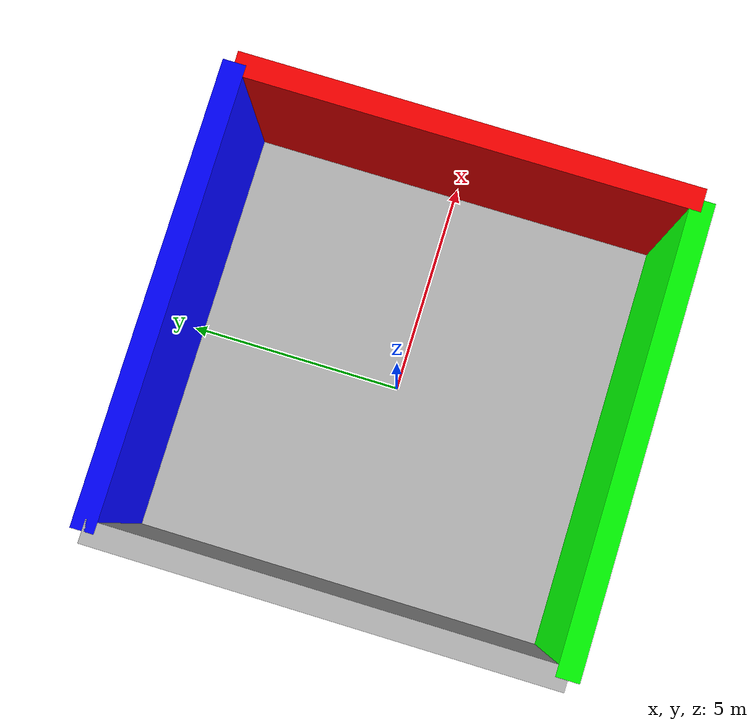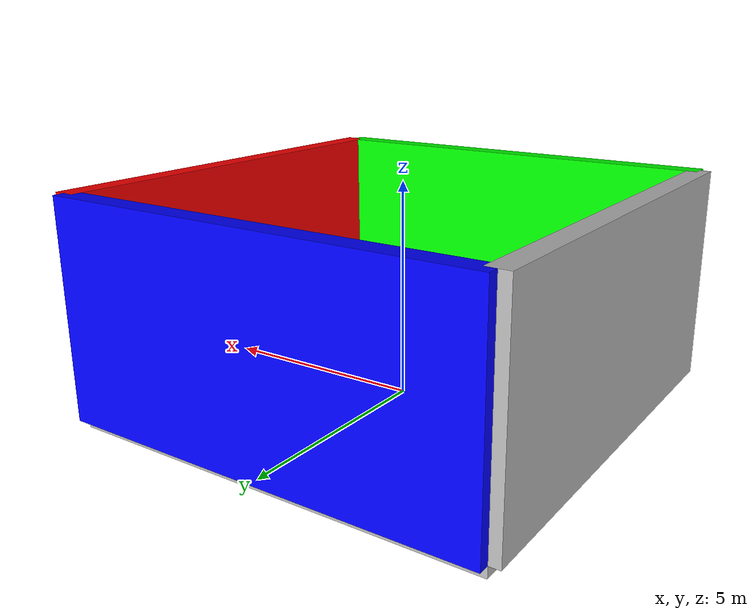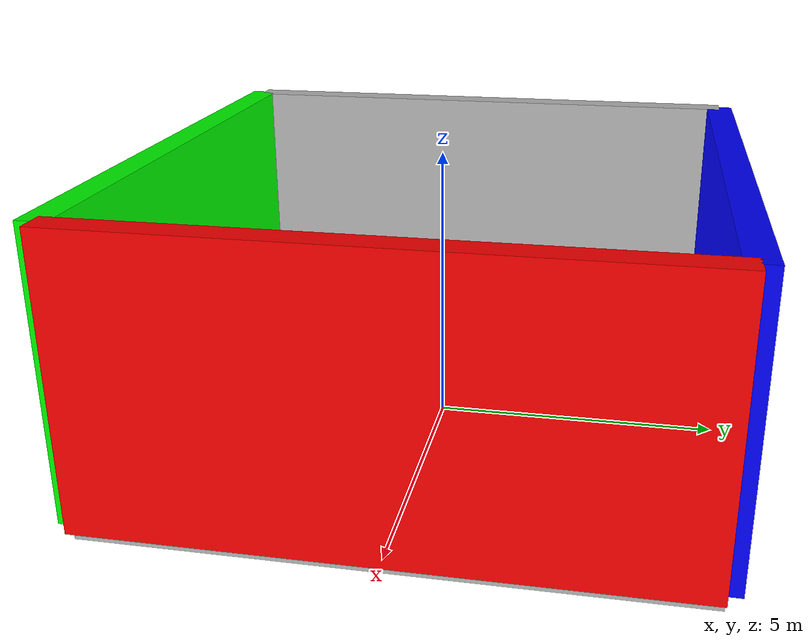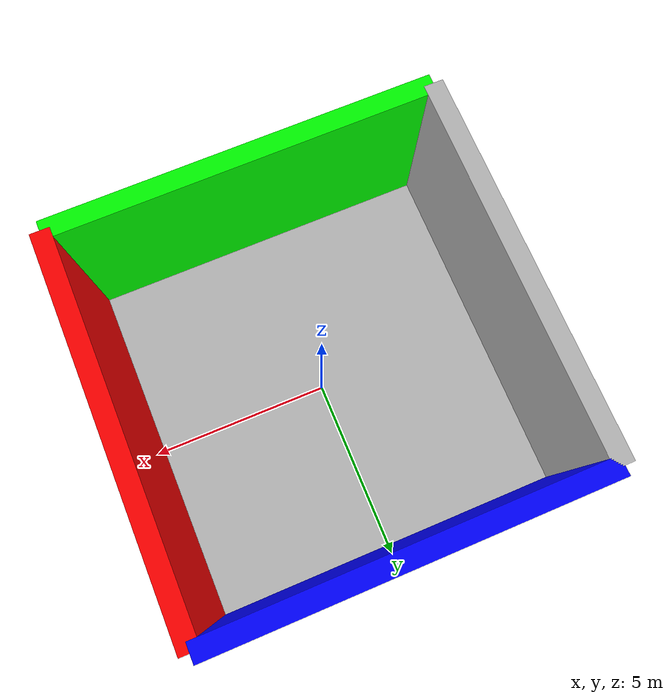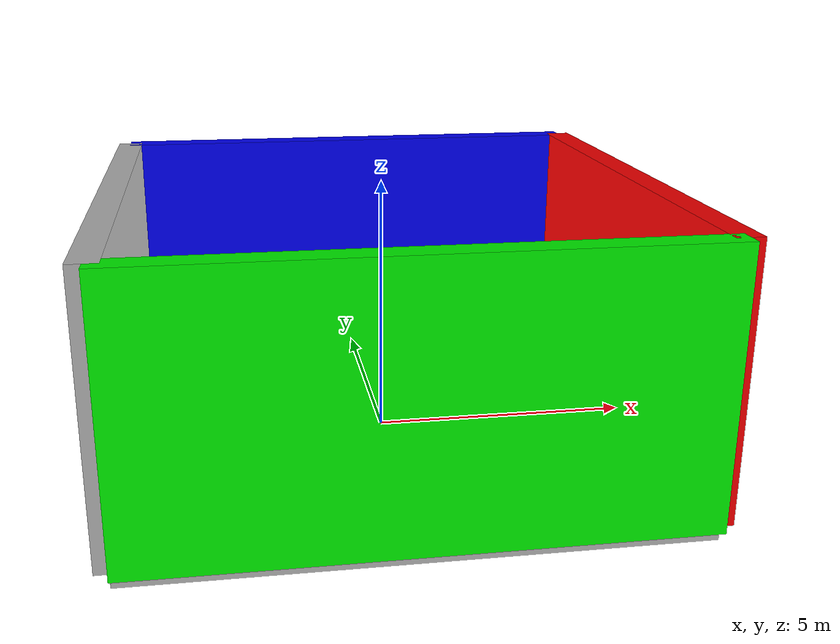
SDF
<?xml version="1.0"?>
<sdf version="1.4">
    <model name="room">
      <pose>0 0 2.5 0 0 0</pose>
      <static>true</static>
      <link name="wall1">
        <pose>-5 0 0 0 0 0</pose>
        <inertial>
          <mass>1.0</mass>
          <inertia> <!-- interias are tricky to compute -->
            <!-- http://answers.gazebosim.org/question/4372/the-inertia-matrix-explained/ -->
            <ixx>10,375</ixx>       <!-- for a box: ixx = 0.083 * mass * (y*y + z*z) -->
            <ixy>0.0</ixy>         <!-- for a box: ixy = 0 -->
            <ixz>0.0</ixz>         <!-- for a box: ixz = 0 -->
            <iyy>2,09575</iyy>       <!-- for a box: iyy = 0.083 * mass * (x*x + z*z) -->
            <iyz>0.0</iyz>         <!-- for a box: iyz = 0 -->
            <izz>8,32075</izz>       <!-- for a box: izz = 0.083 * mass * (x*x + y*y) -->
          </inertia>
        </inertial>
        <collision name="collision">
          <geometry>
            <box>
              <size>0.5 10 5</size>
            </box>
          </geometry>
        </collision>
        <visual name="visual">
          <geometry>
            <box>
              <size>0.5 10 5</size>
            </box>
          </geometry>
        </visual>
      </link>
      <link name="wall2">
        <pose>5 0 0 0 0 0</pose>
        <inertial>
          <mass>1.0</mass>
          <inertia> <!-- interias are tricky to compute -->
            <!-- http://answers.gazebosim.org/question/4372/the-inertia-matrix-explained/ -->
            <ixx>10,375</ixx>       <!-- for a box: ixx = 0.083 * mass * (y*y + z*z) -->
            <ixy>0.0</ixy>         <!-- for a box: ixy = 0 -->
            <ixz>0.0</ixz>         <!-- for a box: ixz = 0 -->
            <iyy>2,09575</iyy>       <!-- for a box: iyy = 0.083 * mass * (x*x + z*z) -->
            <iyz>0.0</iyz>         <!-- for a box: iyz = 0 -->
            <izz>8,32075</izz>       <!-- for a box: izz = 0.083 * mass * (x*x + y*y) -->
          </inertia>
        </inertial>
        <collision name="collision">
          <geometry>
            <box>
              <size>0.5 10 5</size>
            </box>
          </geometry>
        </collision>
        <visual name="visual">
          <geometry>
            <box>
              <size>0.5 10 5</size>
            </box>
          </geometry>
          <material>
	      <ambient>1 0 0 1</ambient>
              <diffuse>1 0 0 1</diffuse>
              <specular>0.1 0.1 0.1 1</specular>
              <emissive>0 0 0 0</emissive>
          </material>
        </visual>
      </link>
      <link name="wall3">
        <pose>0 -5 0 0 0 0</pose>
        <inertial>
          <mass>1.0</mass>
          <inertia> <!-- interias are tricky to compute -->
            <!-- http://answers.gazebosim.org/question/4372/the-inertia-matrix-explained/ -->
            <ixx>2,09575</ixx>       <!-- for a box: ixx = 0.083 * mass * (y*y + z*z) -->
            <ixy>0.0</ixy>         <!-- for a box: ixy = 0 -->
            <ixz>0.0</ixz>         <!-- for a box: ixz = 0 -->
            <iyy>10,375</iyy>       <!-- for a box: iyy = 0.083 * mass * (x*x + z*z) -->
            <iyz>0.0</iyz>         <!-- for a box: iyz = 0 -->
            <izz>8,32075</izz>       <!-- for a box: izz = 0.083 * mass * (x*x + y*y) -->
          </inertia>
        </inertial>
        <collision name="collision">
          <geometry>
            <box>
              <size>10 0.5 5</size>
            </box>
          </geometry>
        </collision>
        <visual name="visual">
          <geometry>
            <box>
              <size>10 0.5 5</size>
            </box>
          </geometry>
	  <material>
	      <ambient>0 1 0 1</ambient>
              <diffuse>0 1 0 1</diffuse>
              <specular>0.1 0.1 0.1 1</specular>
              <emissive>0 0 0 0</emissive>
          </material>
        </visual>
      </link>
      <link name="wall4">
        <pose>0 5 0 0 0 0</pose>
        <inertial>
          <mass>1.0</mass>
          <inertia> <!-- interias are tricky to compute -->
            <!-- http://answers.gazebosim.org/question/4372/the-inertia-matrix-explained/ -->
            <ixx>2,09575</ixx>       <!-- for a box: ixx = 0.083 * mass * (y*y + z*z) -->
            <ixy>0.0</ixy>         <!-- for a box: ixy = 0 -->
            <ixz>0.0</ixz>         <!-- for a box: ixz = 0 -->
            <iyy>10,375</iyy>       <!-- for a box: iyy = 0.083 * mass * (x*x + z*z) -->
            <iyz>0.0</iyz>         <!-- for a box: iyz = 0 -->
            <izz>8,32075</izz>       <!-- for a box: izz = 0.083 * mass * (x*x + y*y) -->
          </inertia>
        </inertial>
        <collision name="collision">
          <geometry>
            <box>
              <size>10 0.5 5</size>
            </box>
          </geometry>
        </collision>
        <visual name="visual">
          <geometry>
            <box>
              <size>10 0.5 5</size>
            </box>
          </geometry>
          <material>
	      <ambient>0 0 1 1</ambient>
              <diffuse>0 0 1 1</diffuse>
              <specular>0.1 0.1 0.1 1</specular>
              <emissive>0 0 0 0</emissive>
          </material>
        </visual>
      </link>
      <link name="floor">
        <pose>0 0 -2.5 0 0 0</pose>
        <inertial>
          <mass>1.0</mass>
          <inertia> <!-- interias are tricky to compute -->
            <!-- http://answers.gazebosim.org/question/4372/the-inertia-matrix-explained/ -->
            <ixx>8,32075</ixx>       <!-- for a box: ixx = 0.083 * mass * (y*y + z*z) -->
            <ixy>0.0</ixy>         <!-- for a box: ixy = 0 -->
            <ixz>0.0</ixz>         <!-- for a box: ixz = 0 -->
            <iyy>8,32075</iyy>       <!-- for a box: iyy = 0.083 * mass * (x*x + z*z) -->
            <iyz>0.0</iyz>         <!-- for a box: iyz = 0 -->
            <izz>16,6</izz>       <!-- for a box: izz = 0.083 * mass * (x*x + y*y) -->
          </inertia>
        </inertial>
        <collision name="collision">
          <geometry>
            <box>
              <size>10 10 0.5</size>
            </box>
          </geometry>
        </collision>
        <visual name="visual">
          <geometry>
            <box>
              <size>10 10 0.5</size>
            </box>
          </geometry>
        </visual>
      </link>
    </model>
</sdf>
